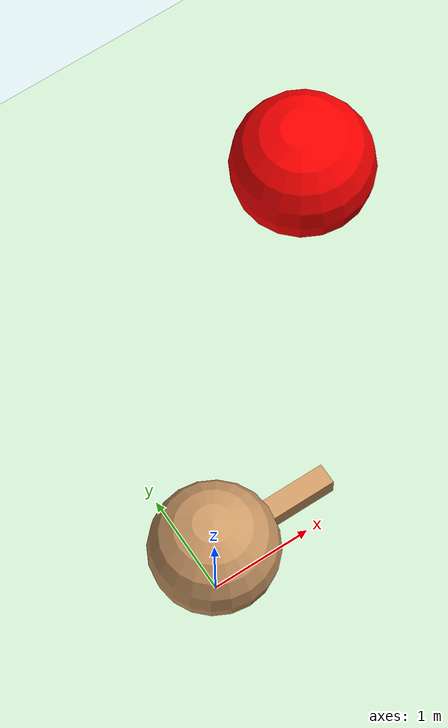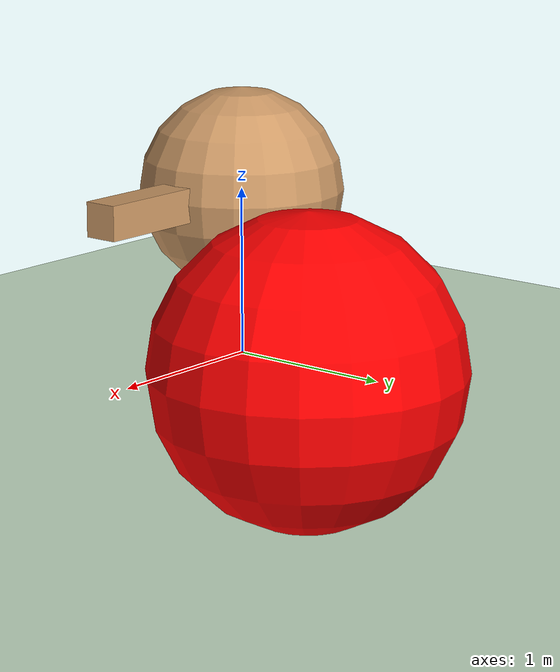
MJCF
<mujoco>
  <compiler inertiafromgeom="true" angle="degree" coordinate="local" />
  <size njmax="5000" nconmax="3500"></size>
  <option timestep="0.01" integrator="RK4" />
  <default>
    <joint limited="false" armature="0" damping="0" />
    <geom condim="3" conaffinity="0" margin="0" friction="1 0.5 0.5" rgba="0.8 0.6 0.4 1" density="100" />
  </default>
  <asset>
    <texture type="skybox" builtin="gradient" width="100" height="100" rgb1="1 1 1" rgb2="0 0 0" />
    <texture name="texgeom" type="cube" builtin="flat" mark="cross" width="127" height="1278" rgb1="0.8 0.6 0.4" rgb2="0.8 0.6 0.4" markrgb="1 1 1" random="0.01" />
    <texture name="texplane" type="2d" builtin="checker" rgb1="0.2 0.3 0.4" rgb2="0.1 0.2 0.3" width="100" height="100" />
    <material name='MatPlane' texture="texplane" shininess="1" texrepeat="30 30" specular="1"  reflectance="0.0" />
    <material name='geom' texture="texgeom" texuniform="true" />
  </asset>
  <worldbody>
    <light directional="true" cutoff="100" exponent="1" diffuse="1 1 1" specular=".1 .1 .1" pos="0 0 1.3" dir="-0 0 -1.3" />
    <geom name='floor' pos='0 0 0' size='40 40 40' type='plane' conaffinity='1' rgba='0.8 0.9 0.8 1' condim='3' material='MatPlane' />
    <body name="torso" pos="0 0 0">
      <geom name="pointbody" type="sphere" size="0.6" pos="0 0 1.0" />
      <geom name="pointarrow" type="box" size="0.6 0.1 0.1" pos="0.6 0 1.0" />
      <joint name='ballx' type='slide' axis='1 0 0' pos='0 0 0' />
      <joint name='bally' type='slide' axis='0 1 0' pos='0 0 0' />
      <joint name='rot' type='hinge' axis='0 0 1' pos='0 0 0' limited="false" />
    </body>
    <body name="skybox" pos="0.8 0.75 0">
      <site name="target0" pos="2 2 1" size="0.7" rgba="1 0 0 1" type="sphere"></site>
      <site name = "subgoal_0" type="sphere" pos="0 0 0.5" size="0.7" rgba="1 0 1 0" /><!-- Subgoal 1: Purple -->
      <site name = "subgoal_1" type="sphere" pos="0 0 0.5" size="0.7" rgba="0 1 0 0" /><!-- Subgoal 2: Green -->
      <site name = "subgoal_2" type="sphere" pos="0 0 0.5" size="0.7" rgba="0.5 0.5 0.5 0" /><!-- Subgoal 3: Gray -->
      <site name = "subgoal_3" type="sphere" pos="0 0 0.5" size="0.7" rgba="1 1 1 0" /><!-- Subgoal 4: White -->
      <site name = "subgoal_4" type="sphere" pos="0 0 0.5" size="0.7" rgba="0 0 0 0" /><!-- Subgoal 5: Black -->
    </body>
  </worldbody>
  <actuator>
    <motor joint='ballx' ctrlrange="-1 1" ctrllimited="true" gear="1.0" />
    <motor joint='rot' ctrlrange="-1 1" ctrllimited="true" gear="0.25" />
  </actuator>
</mujoco>
